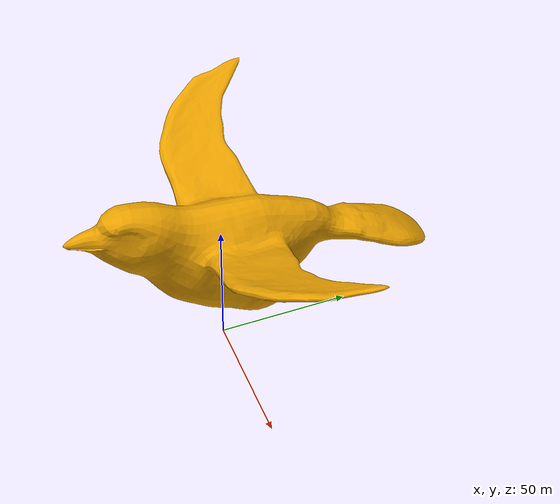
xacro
<robot name="robot">
  <link name="bird_CUERPO_link">
    <inertial>
      <origin xyz="0 0 0" rpy="0 0 0" />
      <mass value="1" />
      <inertia ixx="1" ixy="0" ixz="0" iyy="1" iyz="0" izz="1" />
    </inertial>
    <visual>
      <origin xyz="0 0 0" rpy="0 0 0" />
      <geometry>
        <mesh filename="package://rotors_gazebo/meshes/bird_CUERPO.dae" />
      </geometry>
    </visual>
    <collision>
      <origin xyz="0 0 0" rpy="0 0 0" />
      <geometry>
        <mesh filename="package://rotors_gazebo/meshes/bird_CUERPO.dae" />
      </geometry>
    </collision>
  </link>

  <gazebo> <static>true</static></gazebo>
</robot>
